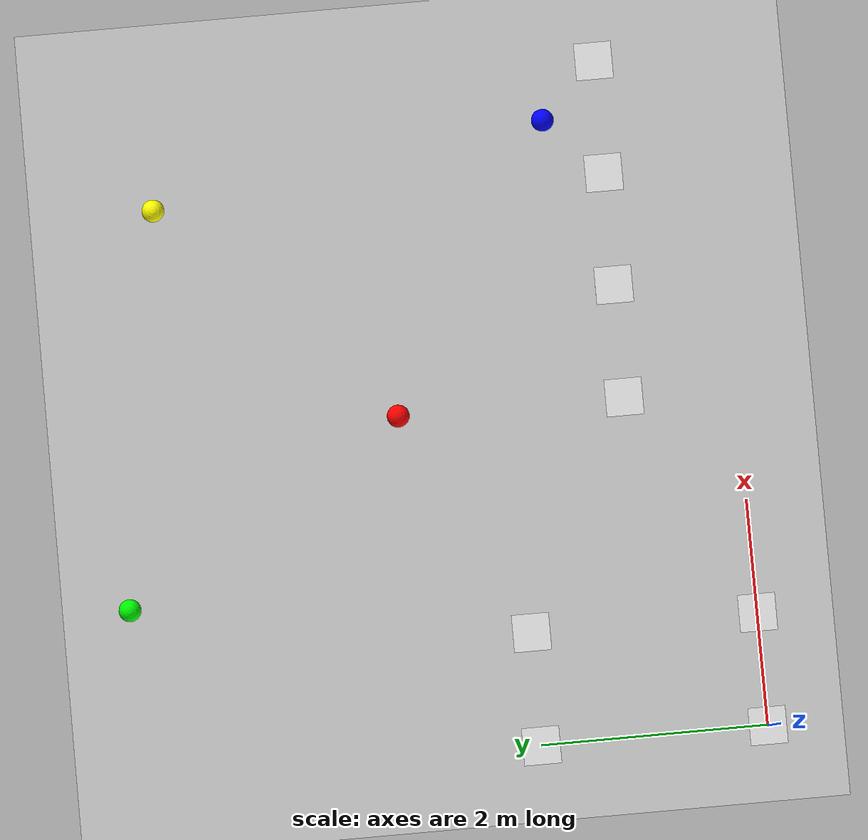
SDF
<sdf version="1.9">
 <world name="aruco_world">
  <include><uri>model://sun</uri></include>
  <include><uri>model://ground_plane</uri></include>
  <include><uri>model://aruco_0</uri></include>
  <include><uri>model://aruco_1</uri><pose>1.0 0.0 0 0 0 0</pose></include>
  <include><uri>model://aruco_10</uri><pose>3.0 1.0 0 0 0 0</pose></include>
  <include><uri>model://aruco_11</uri><pose>4.0 1.0 0 0 0 0</pose></include>
  <include><uri>model://aruco_12</uri><pose>5.0 1.0 0 0 0 0</pose></include>
  <include><uri>model://aruco_13</uri><pose>6.0 1.0 0 0 0 0</pose></include>
  <include><uri>model://aruco_14</uri><pose>0.0 2.0 0 0 0 0</pose></include>
  <include><uri>model://aruco_15</uri><pose>1.0 2.0 0 0 0 0</pose></include>
  <include><uri>model://sphere_red</uri><pose>3.0 3.0 0.1 0 0 0</pose></include>
  <include><uri>model://sphere_green</uri><pose>1.5 5.5 0.1 0 0 0</pose></include>
  <include><uri>model://sphere_blue</uri><pose>5.5 1.5 0.1 0 0 0</pose></include>
  <include><uri>model://sphere_yellow</uri><pose>5.0 5.0 0.1 0 0 0</pose></include>
 </world>
</sdf>

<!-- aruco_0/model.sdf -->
<sdf version="1.9">
  <model name="aruco_0">
    <static>true</static>
    <link name="link">
      <visual name="visual">
        <geometry>
          <plane>
            <normal>0 0 1</normal>
            <size>0.33 0.33</size>
          </plane>
        </geometry>
        <material>
          <script>
            <uri>file://media/materials/scripts/gazebo.material</uri>
            <name>Gazebo/White</name>
          </script>
          <texture>
            <diffuse>model://aruco_0/materials/textures/aruco.png</diffuse>
          </texture>
        </material>
      </visual>
      <collision name="collision">
        <geometry>
          <plane>
            <normal>0 0 1</normal>
            <size>0.33 0.33</size>
          </plane>
        </geometry>
      </collision>
    </link>
  </model>
</sdf>

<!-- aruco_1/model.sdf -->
<sdf version="1.9">
  <model name="aruco_1">
    <static>true</static>
    <link name="link">
      <visual name="visual">
        <geometry>
          <plane>
            <normal>0 0 1</normal>
            <size>0.33 0.33</size>
          </plane>
        </geometry>
        <material>
          <script>
            <uri>file://media/materials/scripts/gazebo.material</uri>
            <name>Gazebo/White</name>
          </script>
          <texture>
            <diffuse>model://aruco_1/materials/textures/aruco.png</diffuse>
          </texture>
        </material>
      </visual>
      <collision name="collision">
        <geometry>
          <plane>
            <normal>0 0 1</normal>
            <size>0.33 0.33</size>
          </plane>
        </geometry>
      </collision>
    </link>
  </model>
</sdf>

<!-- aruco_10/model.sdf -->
<sdf version="1.9">
  <model name="aruco_10">
    <static>true</static>
    <link name="link">
      <visual name="visual">
        <geometry>
          <plane>
            <normal>0 0 1</normal>
            <size>0.33 0.33</size>
          </plane>
        </geometry>
        <material>
          <script>
            <uri>file://media/materials/scripts/gazebo.material</uri>
            <name>Gazebo/White</name>
          </script>
          <texture>
            <diffuse>model://aruco_10/materials/textures/aruco.png</diffuse>
          </texture>
        </material>
      </visual>
      <collision name="collision">
        <geometry>
          <plane>
            <normal>0 0 1</normal>
            <size>0.33 0.33</size>
          </plane>
        </geometry>
      </collision>
    </link>
  </model>
</sdf>

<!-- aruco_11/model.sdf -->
<sdf version="1.9">
  <model name="aruco_11">
    <static>true</static>
    <link name="link">
      <visual name="visual">
        <geometry>
          <plane>
            <normal>0 0 1</normal>
            <size>0.33 0.33</size>
          </plane>
        </geometry>
        <material>
          <script>
            <uri>file://media/materials/scripts/gazebo.material</uri>
            <name>Gazebo/White</name>
          </script>
          <texture>
            <diffuse>model://aruco_11/materials/textures/aruco.png</diffuse>
          </texture>
        </material>
      </visual>
      <collision name="collision">
        <geometry>
          <plane>
            <normal>0 0 1</normal>
            <size>0.33 0.33</size>
          </plane>
        </geometry>
      </collision>
    </link>
  </model>
</sdf>

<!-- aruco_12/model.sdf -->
<sdf version="1.9">
  <model name="aruco_12">
    <static>true</static>
    <link name="link">
      <visual name="visual">
        <geometry>
          <plane>
            <normal>0 0 1</normal>
            <size>0.33 0.33</size>
          </plane>
        </geometry>
        <material>
          <script>
            <uri>file://media/materials/scripts/gazebo.material</uri>
            <name>Gazebo/White</name>
          </script>
          <texture>
            <diffuse>model://aruco_12/materials/textures/aruco.png</diffuse>
          </texture>
        </material>
      </visual>
      <collision name="collision">
        <geometry>
          <plane>
            <normal>0 0 1</normal>
            <size>0.33 0.33</size>
          </plane>
        </geometry>
      </collision>
    </link>
  </model>
</sdf>

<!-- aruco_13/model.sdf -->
<sdf version="1.9">
  <model name="aruco_13">
    <static>true</static>
    <link name="link">
      <visual name="visual">
        <geometry>
          <plane>
            <normal>0 0 1</normal>
            <size>0.33 0.33</size>
          </plane>
        </geometry>
        <material>
          <script>
            <uri>file://media/materials/scripts/gazebo.material</uri>
            <name>Gazebo/White</name>
          </script>
          <texture>
            <diffuse>model://aruco_13/materials/textures/aruco.png</diffuse>
          </texture>
        </material>
      </visual>
      <collision name="collision">
        <geometry>
          <plane>
            <normal>0 0 1</normal>
            <size>0.33 0.33</size>
          </plane>
        </geometry>
      </collision>
    </link>
  </model>
</sdf>

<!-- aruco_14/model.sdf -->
<sdf version="1.9">
  <model name="aruco_14">
    <static>true</static>
    <link name="link">
      <visual name="visual">
        <geometry>
          <plane>
            <normal>0 0 1</normal>
            <size>0.33 0.33</size>
          </plane>
        </geometry>
        <material>
          <script>
            <uri>file://media/materials/scripts/gazebo.material</uri>
            <name>Gazebo/White</name>
          </script>
          <texture>
            <diffuse>model://aruco_14/materials/textures/aruco.png</diffuse>
          </texture>
        </material>
      </visual>
      <collision name="collision">
        <geometry>
          <plane>
            <normal>0 0 1</normal>
            <size>0.33 0.33</size>
          </plane>
        </geometry>
      </collision>
    </link>
  </model>
</sdf>

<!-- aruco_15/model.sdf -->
<sdf version="1.9">
  <model name="aruco_15">
    <static>true</static>
    <link name="link">
      <visual name="visual">
        <geometry>
          <plane>
            <normal>0 0 1</normal>
            <size>0.33 0.33</size>
          </plane>
        </geometry>
        <material>
          <script>
            <uri>file://media/materials/scripts/gazebo.material</uri>
            <name>Gazebo/White</name>
          </script>
          <texture>
            <diffuse>model://aruco_15/materials/textures/aruco.png</diffuse>
          </texture>
        </material>
      </visual>
      <collision name="collision">
        <geometry>
          <plane>
            <normal>0 0 1</normal>
            <size>0.33 0.33</size>
          </plane>
        </geometry>
      </collision>
    </link>
  </model>
</sdf>

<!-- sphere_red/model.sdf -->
<sdf version="1.9">
  <model name="sphere_red">
    <static>true</static>
    <link name="link">
      <visual name="visual">
        <geometry>
          <sphere>
            <radius>0.1</radius>
          </sphere>
        </geometry>
        <material>
          <ambient>1 0 0 1</ambient>
          <diffuse>1 0 0 1</diffuse>
        </material>
      </visual>
    </link>
  </model>
</sdf>

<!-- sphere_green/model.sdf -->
<sdf version="1.9">
  <model name="sphere_green">
    <static>true</static>
    <link name="link">
      <visual name="visual">
        <geometry>
          <sphere>
            <radius>0.1</radius>
          </sphere>
        </geometry>
        <material>
          <ambient>0 1 0 1</ambient>
          <diffuse>0 1 0 1</diffuse>
        </material>
      </visual>
    </link>
  </model>
</sdf>

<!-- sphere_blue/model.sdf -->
<sdf version="1.9">
  <model name="sphere_blue">
    <static>true</static>
    <link name="link">
      <visual name="visual">
        <geometry>
          <sphere>
            <radius>0.1</radius>
          </sphere>
        </geometry>
        <material>
          <ambient>0 0 1 1</ambient>
          <diffuse>0 0 1 1</diffuse>
        </material>
      </visual>
    </link>
  </model>
</sdf>

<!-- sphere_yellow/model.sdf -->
<sdf version="1.9">
  <model name="sphere_yellow">
    <static>true</static>
    <link name="link">
      <visual name="visual">
        <geometry>
          <sphere>
            <radius>0.1</radius>
          </sphere>
        </geometry>
        <material>
          <ambient>1 1 0 1</ambient>
          <diffuse>1 1 0 1</diffuse>
        </material>
      </visual>
    </link>
  </model>
</sdf>
